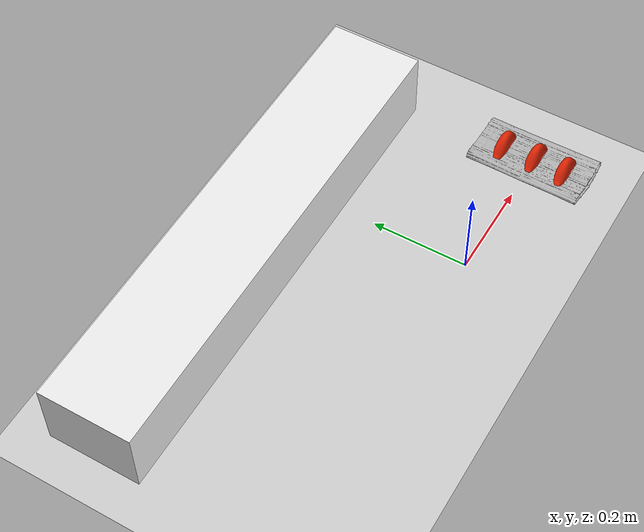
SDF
<sdf version="1.7">
 <world name="default">
  <plugin name="sushi_bot_gazebo_plugin_pick_and_drop" filename="libsushi_bot_gazebo_plugin_pick_and_drop.so">
   <robot_model>sushi_bot</robot_model>
   <robot_link>link_5</robot_link>
   <relative_pose>0.0 0 0.04 0 3.14 0</relative_pose>
   <manipulatable_distance>2.0</manipulatable_distance>
  </plugin>
  <light name="sun" type="directional">
   <pose>0 0 10 0 -0 0</pose>
   <diffuse>0.8 0.8 0.8 1</diffuse>
   <specular>0.2 0.2 0.2 1</specular>
   <attenuation>
    <range>1000</range>
    <constant>0.9</constant>
    <linear>0.01</linear>
    <quadratic>0.001</quadratic>
   </attenuation>
   <direction>-0.5 0.1 -0.9</direction>
   <spot><inner_angle>0</inner_angle><outer_angle>0</outer_angle><falloff>0</falloff></spot>
  </light>
  <model name="ground_plane">
   <static>1</static>
   <link name="link">
    <collision name="collision">
     <geometry><plane><normal>0 0 1</normal><size>100 100</size></plane></geometry>
     <surface>
      <contact><collide_bitmask>65535</collide_bitmask></contact>
      <friction><ode><mu>100</mu><mu2>50</mu2></ode></friction>
     </surface>
     <max_contacts>20</max_contacts>
    </collision>
    <visual name="visual">
     <cast_shadows>0</cast_shadows>
     <geometry><plane><normal>0 0 1</normal><size>100 100</size></plane></geometry>
     <material>
      <script><uri>file://media/materials/scripts/gazebo.material</uri><name>Gazebo/Grey</name></script>
     </material>
    </visual>
   </link>
  </model>
  <gravity>0 0 -9.8</gravity>
  <magnetic_field>6e-06 2.3e-05 -4.2e-05</magnetic_field>
  <atmosphere type="adiabatic"/>
  <physics type="ode">
   <max_step_size>0.001</max_step_size>
   <real_time_factor>1</real_time_factor>
   <real_time_update_rate>1000</real_time_update_rate>
  </physics>
  <scene><ambient>0.4 0.4 0.4 1</ambient><background>0.7 0.7 0.7 1</background><shadows>1</shadows></scene>
  <audio><device>default</device></audio>
  <spherical_coordinates>
   <surface_model>EARTH_WGS84</surface_model>
   <latitude_deg>0</latitude_deg>
   <longitude_deg>0</longitude_deg>
   <elevation>0</elevation>
   <heading_deg>0</heading_deg>
  </spherical_coordinates>
  <model name="Sushi_Mat">
   <static>1</static>
   <link name="link_0">
    <visual name="visual">
     <geometry>
      <mesh>
       <uri>/home/wsl_ubuntu/colcon_ws/install/sushi_bot_worlds/share/sushi_bot_worlds/models/Sushi_Mat/meshes/model.obj</uri>
      </mesh>
     </geometry>
    </visual>
    <collision name="collision_0">
     <geometry>
      <mesh>
       <uri>/home/wsl_ubuntu/colcon_ws/install/sushi_bot_worlds/share/sushi_bot_worlds/models/Sushi_Mat/meshes/model.obj</uri>
      </mesh>
     </geometry>
     <max_contacts>20</max_contacts>
    </collision>
    <inertial>
     <inertia><ixx>1</ixx><ixy>0</ixy><ixz>0</ixz><iyy>1</iyy><iyz>0</iyz><izz>1</izz></inertia>
     <mass>1</mass>
    </inertial>
   </link>
   <pose>0.298373 0 -0.000925 0 -0 0</pose>
  </model>
  <model name="conveyor_belt">
   <static>1</static>
   <pose>-0.196868 0.368847 0.073317 0 -0 0</pose>
   <link name="link">
    <inertial>
     <mass>1</mass>
     <inertia>
      <ixx>0.166667</ixx>
      <ixy>0</ixy>
      <ixz>0</ixz>
      <iyy>0.166667</iyy>
      <iyz>0</iyz>
      <izz>0.166667</izz>
     </inertia>
    </inertial>
    <collision name="collision">
     <geometry><box><size>1 0.191017 0.146743</size></box></geometry>
     <max_contacts>20</max_contacts>
    </collision>
    <visual name="visual">
     <geometry><box><size>1 0.191017 0.146743</size></box></geometry>
     <material>
      <script><name>Gazebo/WhiteGlow"</name><uri>file://media/materials/scripts/gazebo.material</uri></script>
     </material>
    </visual>
   </link>
  </model>
  <model name="SalmonSushi_0">
   <static>0</static>
   <link name="link">
    <inertial>
     <mass>0.0599</mass>
     <inertia>
      <ixx>0.000302896</ixx>
      <ixy>0</ixy>
      <ixz>0</ixz>
      <iyy>0.000302896</iyy>
      <iyz>0</iyz>
      <izz>3.28764e-05</izz>
     </inertia>
    </inertial>
    <collision name="collision">
     <geometry><box><size>0.07 0.025 0.025</size></box></geometry>
     <surface>
      <contact>
       <poissons_ratio>0.35</poissons_ratio>
       <elastic_modulus>3.10264e+09</elastic_modulus>
       <ode><kp>100000</kp><kd>100</kd><max_vel>1</max_vel><min_depth>0.001</min_depth></ode>
      </contact>
      <friction>
       <torsional>
        <coefficient>1</coefficient>
        <use_patch_radius>0</use_patch_radius>
        <surface_radius>0.01</surface_radius>
       </torsional>
       <mu>100.0</mu>
       <mu2>100.0</mu2>
      </friction>
     </surface>
    </collision>
    <visual name="visual">
     <pose>0 0 0 1.5708 -0 0</pose>
     <geometry><mesh><uri>model://SalmonSushi/meshes/model.dae</uri><scale>4 4 4</scale></mesh></geometry>
    </visual>
   </link>
   <pose>0.298543 -0.002394 0.020936 0.021342 -0.025697 -0.003964</pose>
  </model>
  <model name="SalmonSushi_1">
   <static>0</static>
   <link name="link">
    <inertial>
     <mass>0.0599</mass>
     <inertia>
      <ixx>0.000302896</ixx>
      <ixy>0</ixy>
      <ixz>0</ixz>
      <iyy>0.000302896</iyy>
      <iyz>0</iyz>
      <izz>3.28764e-05</izz>
     </inertia>
    </inertial>
    <collision name="collision">
     <geometry><box><size>0.07 0.025 0.025</size></box></geometry>
     <surface>
      <contact>
       <poissons_ratio>0.35</poissons_ratio>
       <elastic_modulus>3.10264e+09</elastic_modulus>
       <ode><kp>100000</kp><kd>100</kd><max_vel>1</max_vel><min_depth>0.001</min_depth></ode>
      </contact>
      <friction>
       <torsional>
        <coefficient>1</coefficient>
        <use_patch_radius>0</use_patch_radius>
        <surface_radius>0.01</surface_radius>
       </torsional>
       <mu>100.0</mu>
       <mu2>100.0</mu2>
      </friction>
     </surface>
    </collision>
    <visual name="visual">
     <pose>0 0 0 1.5708 -0 0</pose>
     <geometry><mesh><uri>model://SalmonSushi/meshes/model.dae</uri><scale>4 4 4</scale></mesh></geometry>
    </visual>
   </link>
   <pose>0.294609 -0.068098 0.021581 -0.013086 -0.007178 0.000222</pose>
  </model>
  <model name="SalmonSushi_2">
   <static>0</static>
   <link name="link">
    <inertial>
     <mass>0.0599</mass>
     <inertia>
      <ixx>0.000302896</ixx>
      <ixy>0</ixy>
      <ixz>0</ixz>
      <iyy>0.000302896</iyy>
      <iyz>0</iyz>
      <izz>3.28764e-05</izz>
     </inertia>
    </inertial>
    <collision name="collision">
     <geometry><box><size>0.07 0.025 0.025</size></box></geometry>
     <surface>
      <contact>
       <poissons_ratio>0.35</poissons_ratio>
       <elastic_modulus>3.10264e+09</elastic_modulus>
       <ode><kp>100000</kp><kd>100</kd><max_vel>1</max_vel><min_depth>0.001</min_depth></ode>
      </contact>
      <friction>
       <torsional>
        <coefficient>1</coefficient>
        <use_patch_radius>0</use_patch_radius>
        <surface_radius>0.01</surface_radius>
       </torsional>
       <mu>100.0</mu>
       <mu2>100.0</mu2>
      </friction>
     </surface>
    </collision>
    <visual name="visual">
     <pose>0 0 0 1.5708 -0 0</pose>
     <geometry><mesh><uri>model://SalmonSushi/meshes/model.dae</uri><scale>4 4 4</scale></mesh></geometry>
    </visual>
   </link>
   <pose>0.296426 0.066168 0.022329 0.064241 -0.01302 0.004549</pose>
  </model>
 </world>
</sdf>
